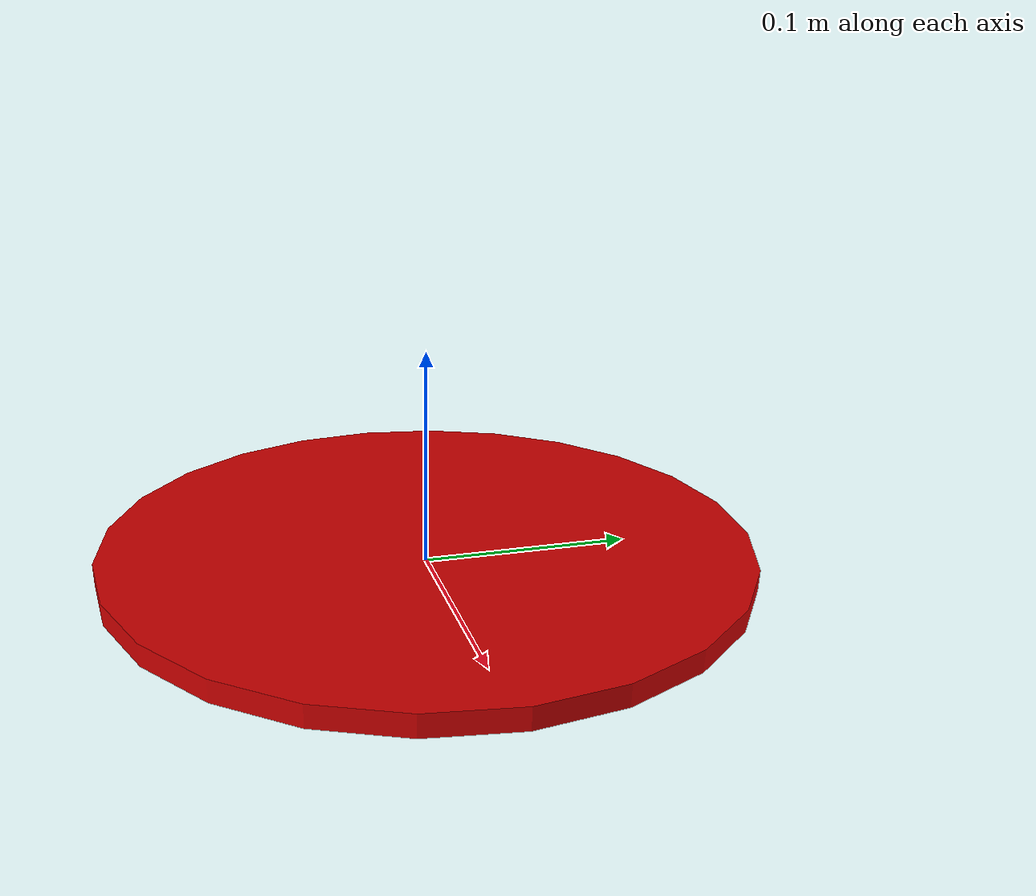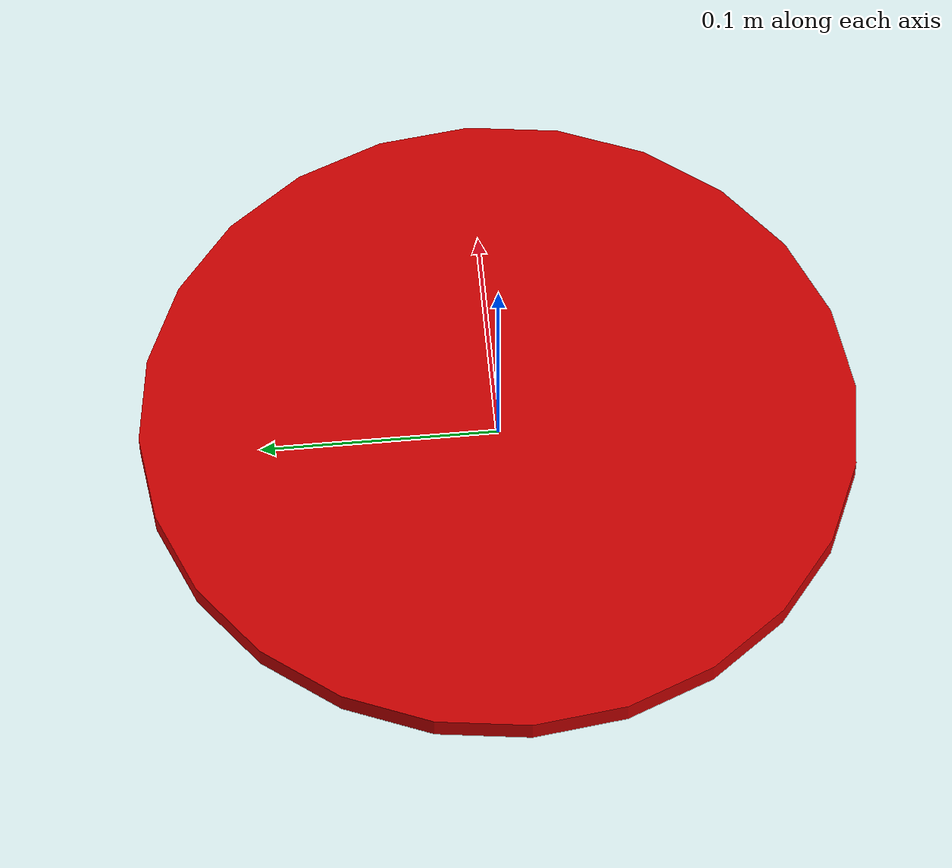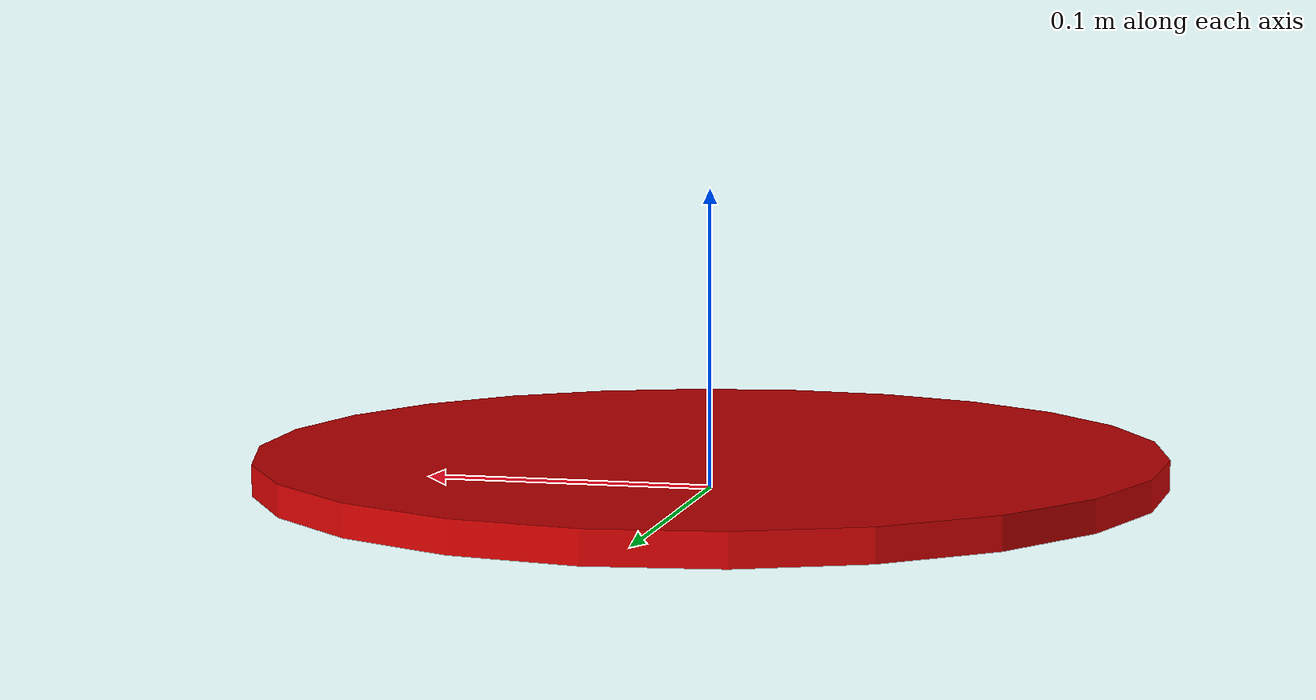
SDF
<?xml version='1.0'?>
<sdf version='1.9'>
  <model name="RelayPoint">
    <static>true</static>
    <!-- Add a base link (can be minimal) -->

    <link name="circle_link">
      <pose>0 0 0.01 0 0 0</pose>

      <!-- Visual Element (PBR Material) -->
      <visual name='visual'>
        <geometry>
          <cylinder>
            <radius>0.15</radius>
            <length>0.01</length>
          </cylinder>
        </geometry>
        <material>
          <ambient>1.0 0.0 0.0 1</ambient>
          <diffuse>0.8 0.0 0.0 1</diffuse>
          <transparency>0.5</transparency>
        </material>
      </visual>
    </link>
    <plugin filename="libignition-gazebo-pose-publisher-system.so"
          name="ignition::gazebo::systems::PosePublisher">
        <publish_model_pose>true</publish_model_pose>
        <publish_link_pose>false</publish_link_pose>
        <publish_nested_model_pose>true</publish_nested_model_pose>
        <use_pose_vector_msg>false</use_pose_vector_msg>
        <update_frequency>30</update_frequency>
        <static_publisher>true</static_publisher>
        <static_update_frequency>10</static_update_frequency>
    </plugin>
  </model>
</sdf>
